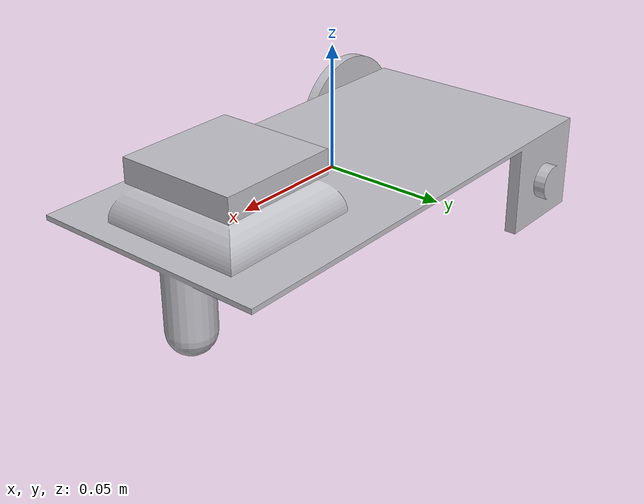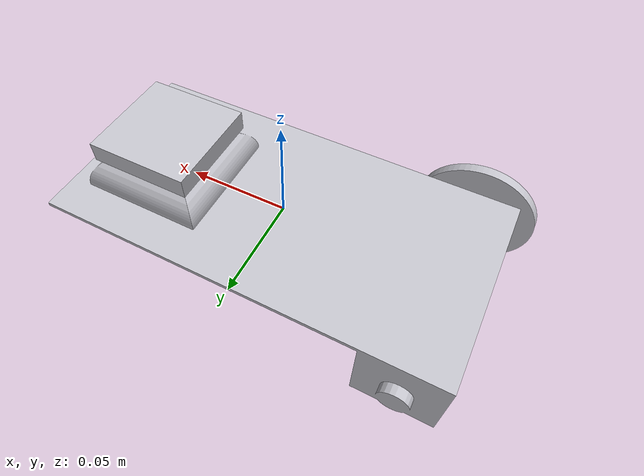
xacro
<?xml version="1.0" ?>
<robot name="task" xmlns:xacro="http://www.ros.org/wiki/xacro">

<xacro:include filename="$(find task_description)/urdf/materials.xacro" />
<xacro:include filename="$(find task_description)/urdf/task.trans" />
<xacro:include filename="$(find task_description)/urdf/task.gazebo" />
<link name="base_link">
  <inertial>
    <origin xyz="0.13620395915039965 -5.448246416924134e-05 0.05683012743698934" rpy="0 0 0"/>
    <mass value="0.9053692466696087"/>
    <inertia ixx="0.000838" iyy="0.003678" izz="0.004167" ixy="1e-05" iyz="-1.7e-05" ixz="-0.000217"/>
  </inertial>
  <visual>
    <origin xyz="0 0 0" rpy="0 0 0"/>
    <geometry>
      <mesh filename="package://task_description/meshes/base_link.stl" scale="0.001 0.001 0.001"/>
    </geometry>
    <material name="silver"/>
  </visual>
  <collision>
    <origin xyz="0 0 0" rpy="0 0 0"/>
    <geometry>
      <mesh filename="package://task_description/meshes/base_link.stl" scale="0.001 0.001 0.001"/>
    </geometry>
  </collision>
</link>

<link name="right_wheel_1">
  <inertial>
    <origin xyz="4.3306063252784854e-07 -0.0024999999999991487 4.857349246642495e-07" rpy="0 0 0"/>
    <mass value="0.11097676048805943"/>
    <inertia ixx="2.5e-05" iyy="5e-05" izz="2.5e-05" ixy="-0.0" iyz="0.0" ixz="0.0"/>
  </inertial>
  <visual>
    <origin xyz="-0.034817 0.055 -0.040014" rpy="0 0 0"/>
    <geometry>
      <mesh filename="package://task_description/meshes/right_wheel_1.stl" scale="0.001 0.001 0.001"/>
    </geometry>
    <material name="silver"/>
  </visual>
  <collision>
    <origin xyz="-0.034817 0.055 -0.040014" rpy="0 0 0"/>
    <geometry>
      <mesh filename="package://task_description/meshes/right_wheel_1.stl" scale="0.001 0.001 0.001"/>
    </geometry>
  </collision>
</link>

<link name="left_wheel_1">
  <inertial>
    <origin xyz="-1.448352848626433e-07 0.0025000000000010153 4.857349246017995e-07" rpy="0 0 0"/>
    <mass value="0.1109767604880594"/>
    <inertia ixx="2.5e-05" iyy="5e-05" izz="2.5e-05" ixy="-0.0" iyz="0.0" ixz="0.0"/>
  </inertial>
  <visual>
    <origin xyz="-0.035784 -0.055 -0.039014" rpy="0 0 0"/>
    <geometry>
      <mesh filename="package://task_description/meshes/left_wheel_1.stl" scale="0.001 0.001 0.001"/>
    </geometry>
    <material name="silver"/>
  </visual>
  <collision>
    <origin xyz="-0.035784 -0.055 -0.039014" rpy="0 0 0"/>
    <geometry>
      <mesh filename="package://task_description/meshes/left_wheel_1.stl" scale="0.001 0.001 0.001"/>
    </geometry>
  </collision>
</link>

<link name="liar_1">
  <inertial>
    <origin xyz="1.9421483904435988e-07 4.404705357672397e-07 0.00500048573492462" rpy="0 0 0"/>
    <mass value="0.19624999999999998"/>
    <inertia ixx="4.3e-05" iyy="4.3e-05" izz="8.2e-05" ixy="-0.0" iyz="0.0" ixz="0.0"/>
  </inertial>
  <visual>
    <origin xyz="-0.175588 -0.001533 -0.076014" rpy="0 0 0"/>
    <geometry>
      <mesh filename="package://task_description/meshes/liar_1.stl" scale="0.001 0.001 0.001"/>
    </geometry>
    <material name="silver"/>
  </visual>
  <collision>
    <origin xyz="-0.175588 -0.001533 -0.076014" rpy="0 0 0"/>
    <geometry>
      <mesh filename="package://task_description/meshes/liar_1.stl" scale="0.001 0.001 0.001"/>
    </geometry>
  </collision>
</link>

<joint name="Rev1" type="continuous">
  <origin xyz="0.034817 -0.055 0.040014" rpy="0 0 0"/>
  <parent link="base_link"/>
  <child link="right_wheel_1"/>
  <axis xyz="0.0 1.0 0.0"/>
</joint>

<joint name="Rev2" type="continuous">
  <origin xyz="0.035784 0.055 0.039014" rpy="0 0 0"/>
  <parent link="base_link"/>
  <child link="left_wheel_1"/>
  <axis xyz="0.0 1.0 0.0"/>
</joint>

<joint name="Rigid3" type="fixed">
  <origin xyz="0.175588 0.001533 0.076014" rpy="0 0 0"/>
  <parent link="base_link"/>
  <child link="liar_1"/>
</joint>

</robot>

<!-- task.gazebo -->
<robot name="task" xmlns:xacro="http://www.ros.org/wiki/xacro" >

<xacro:property name="body_color" value="Gazebo/Silver" />

<gazebo>
  <plugin name="control" filename="libgazebo_ros_control.so"/>
</gazebo>
<gazebo reference="base_link">
  <material>${body_color}</material>
  <mu1>3500</mu1>
  <mu2>3500</mu2>
  <selfCollide>true</selfCollide>
  <gravity>true</gravity>
</gazebo>

<gazebo reference="right_wheel_1">
  <material>${body_color}</material>
  <mu1>3500</mu1>
  <mu2>3500</mu2>
  <selfCollide>true</selfCollide>
</gazebo>

<gazebo reference="left_wheel_1">
  <material>${body_color}</material>
  <mu1>3500</mu1>
  <mu2>3500</mu2>
  <selfCollide>true</selfCollide>
</gazebo>

<gazebo reference="liar_1">
  <material>${body_color}</material>
  <mu1>3500</mu1>
  <mu2>3500</mu2>
  <selfCollide>true</selfCollide>
</gazebo>
  <gazebo>
  <plugin name="differential_drive_controller" filename="libgazebo_ros_diff_drive.so">

    <!-- Plugin update rate in Hz -->
    <updateRate>$1000</updateRate>

    <!-- Name of left joint, defaults to `left_joint` -->
    <leftJoint>Rev2</leftJoint>

    <!-- Name of right joint, defaults to `right_joint` -->
    <rightJoint>Rev1</rightJoint>

    <!-- The distance from the center of one wheel to the other, in meters, defaults to 0.34 m -->
    <wheelSeparation>0.5380</wheelSeparation>

    <!-- Diameter of the wheels, in meters, defaults to 0.15 m -->
    <wheelDiameter>0.2410</wheelDiameter>

    <!-- Wheel acceleration, in rad/s^2, defaults to 0.0 rad/s^2 -->
    <wheelAcceleration>1.0</wheelAcceleration>

    <!-- Maximum torque which the wheels can produce, in Nm, defaults to 5 Nm -->
    <wheelTorque>20</wheelTorque>

    <!-- Topic to receive geometry_msgs/Twist message commands, defaults to `cmd_vel` -->
    <commandTopic>cmd_vel</commandTopic>

    <!-- Topic to publish nav_msgs/Odometry messages, defaults to `odom` -->
    <odometryTopic>odom</odometryTopic>

    <!-- Odometry frame, defaults to `odom` -->
    <odometryFrame>odom</odometryFrame>

    <!-- Robot frame to calculate odometry from, defaults to `base_footprint` -->
    <robotBaseFrame>base_link</robotBaseFrame>

    <!-- Odometry source, 0 for ENCODER, 1 for WORLD, defaults to WORLD -->
    <odometrySource>1</odometrySource>

    <!-- Set to true to publish transforms for the wheel links, defaults to false -->
    <publishWheelTF>true</publishWheelTF>

    <!-- Set to true to publish transforms for the odometry, defaults to true -->
    <publishOdom>true</publishOdom>

    <!-- Set to true to publish sensor_msgs/JointState on /joint_states for the wheel joints, defaults to false -->
    <publishWheelJointState>true</publishWheelJointState>

    <!-- Set to true to swap right and left wheels, defaults to true -->
    <legacyMode>false</legacyMode>
  </plugin>
</gazebo>

</robot>
